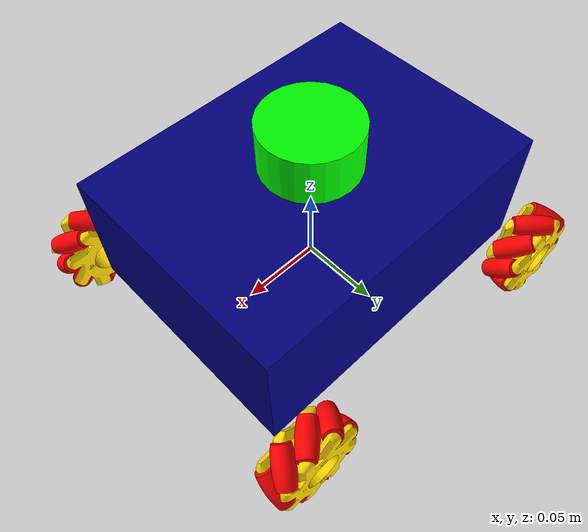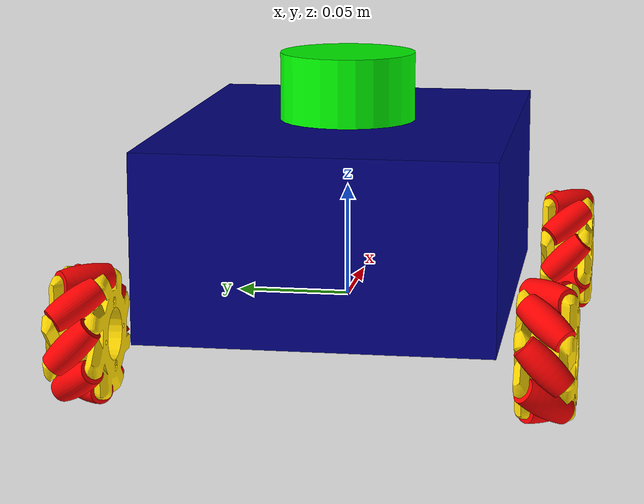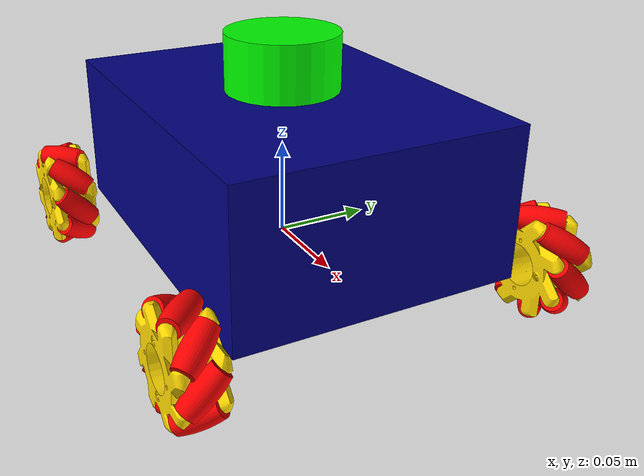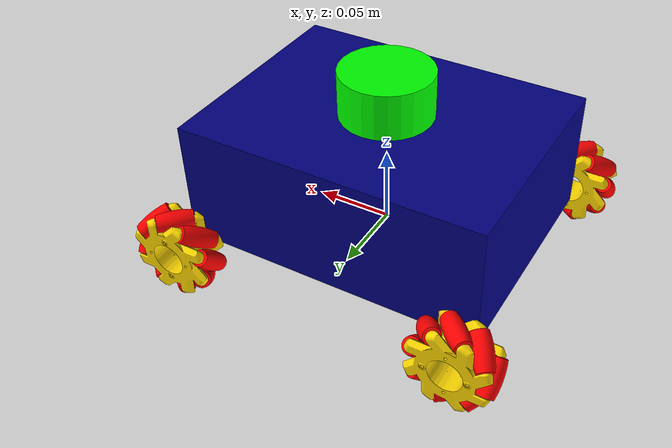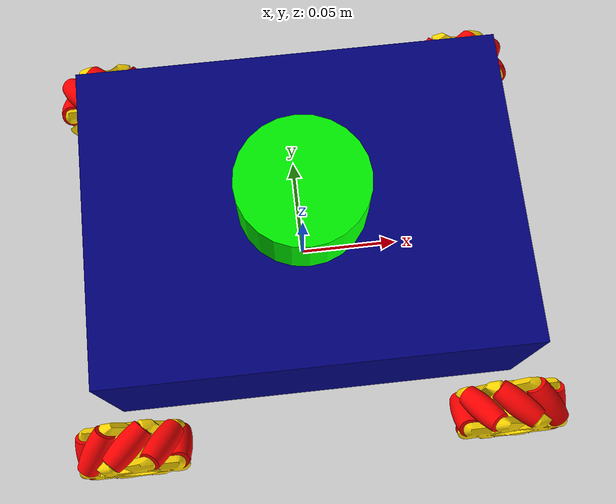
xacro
<?xml version="1.0"?>
<robot xmlns:xacro="http://www.ros.org/wiki/xacro" name="mecanum_bot">

  <xacro:include filename="$(find first_urdf)/urdf/mecanum_wheel.xacro" />

  <link name="base_link">
    <visual>
      <origin xyz="0 0 0" rpy="0 0 0" />
      <geometry>
        <box size="0.20 0.15 0.08" />
      </geometry>
      <material name="blue">
        <color rgba="0.0 0.0 0.5 1.0"/>
      </material>
    </visual>
    <collision>
      <origin xyz="0 0 0" rpy="0 0 0" />
      <geometry>
        <box size="0.20 0.15 0.08" />
      </geometry>
    </collision>
    <inertial>
      <origin xyz="0 0 0" rpy="0 0 0"/>
      <mass value="8" />

      <inertia ixx="0.019267" ixy="0.0" ixz="0.0" iyy="0.030933" iyz="0.0" izz="0.041667" />
    </inertial>
  </link>

  <gazebo reference="base_link">
    <material>Gazebo/Blue</material>
    <mu1>0.2</mu1>
    <mu2>0.2</mu2>
    <gravity>true</gravity>
  </gazebo>

  <link name="base_footprint"/>

  <joint name="base_footprint_joint" type="fixed">
    <parent link="base_footprint"/>
    <child link="base_link"/>
    <origin xyz="0 0 0.04" rpy="0 0 0"/>
  </joint>

  <link name="laser_frame">
    <visual>
      <geometry>
        <cylinder radius="0.03" length="0.03"/>
      </geometry>
      <material name="green">
        <color rgba="0.0 1.0 0.0 1.0"/>
      </material>
    </visual>
    <collision>
      <geometry>
        <cylinder radius="0.03" length="0.03"/>
      </geometry>
    </collision>
  </link>

  <joint name="laser_joint" type="fixed">
      <parent link="base_link"/>
      <child link="laser_frame"/>
      <origin xyz="0 0 0.055" rpy="0 0 0"/>
  </joint>

  <gazebo reference="laser_frame">
    <sensor name="laser" type="ray">
      <pose> 0 0 0 0 0 0 </pose>
      <visualize>true</visualize>
      <update_rate>10</update_rate>
      <ray>
        <scan>
          <horizontal>
            <samples>360</samples>
            <min_angle>-3.14</min_angle>
            <max_angle>3.14</max_angle>
          </horizontal>
        </scan>
        <range>
          <min>0.15</min>
          <max>6.0</max>
        </range>
      </ray>
      <plugin name="laser_controller" filename="libgazebo_ros_ray_sensor.so">
        <ros>
          <use_sim_time>true</use_sim_time>
          <argument>~/out:=scan</argument> <!--This is remapping from the out topic of the controller to scan topic-->
        </ros>
        <output_type>sensor_msgs/LaserScan</output_type>
        <frame_name>laser_frame</frame_name>
      </plugin>
    </sensor>
    <material>Gazebo/Green</material>
  </gazebo>

  <link name="imu_link">
    <visual>
      <geometry>
        <box size="0.02 0.02 0.02"/>
      </geometry>
      <material name="red">
        <color rgba="1.0 0.0 0.0 1.0"/>
      </material>
    </visual>
    <collision>
      <geometry>
        <box size="0.02 0.02 0.02"/>
      </geometry>
    </collision>
    <inertial>
      <mass value="0.01"/>
      <inertia ixx="1e-6" ixy="0" ixz="0" iyy="1e-6" iyz="0" izz="1e-6"/>
    </inertial>
  </link>

  <joint name="imu_joint" type="fixed">
    <parent link="base_link"/>
    <child link="imu_link"/>
    <origin xyz="0 0 0" rpy="0 0 0"/>
  </joint>

  <gazebo reference="imu_link">
    <sensor name="imu_sensor" type="imu">
      <always_on>true</always_on>
      <update_rate>100</update_rate>
      <visualize>false</visualize>
      <imu>
        <angular_velocity>
          <x><noise type="gaussian"><mean>0.0</mean><stddev>0.0002</stddev></noise></x>
          <y><noise type="gaussian"><mean>0.0</mean><stddev>0.0002</stddev></noise></y>
          <z><noise type="gaussian"><mean>0.0</mean><stddev>0.0002</stddev></noise></z>
        </angular_velocity>
        <linear_acceleration>
          <x><noise type="gaussian"><mean>0.0</mean><stddev>0.017</stddev></noise></x>
          <y><noise type="gaussian"><mean>0.0</mean><stddev>0.017</stddev></noise></y>
          <z><noise type="gaussian"><mean>0.0</mean><stddev>0.017</stddev></noise></z>
        </linear_acceleration>
      </imu>
      <plugin name="imu_plugin" filename="libgazebo_ros_imu_sensor.so">
        <ros>
          <namespace>/</namespace>
          <remapping>~/out:=imu</remapping>
        </ros>
        <initial_orientation_as_reference>false</initial_orientation_as_reference>
        <frame_name>imu_link</frame_name>
      </plugin>
    </sensor>
  </gazebo>

  <xacro:property name="wheel_stance" value="0.095" />
  <xacro:property name="wheel_z" value="-0.037" />

  <xacro:mecanum_wheel prefix="front_left"  parent="base_link"
    xyz="${wheel_stance} ${wheel_stance} ${wheel_z}"
    roll_sign="1"   hub_sign="1"  mesh_pkg="first_urdf" />
  <xacro:mecanum_wheel prefix="front_right" parent="base_link"
    xyz="${wheel_stance} ${-wheel_stance} ${wheel_z}"
    roll_sign="-1"  hub_sign="-1" mesh_pkg="first_urdf" />
  <xacro:mecanum_wheel prefix="rear_left"   parent="base_link"
    xyz="${-wheel_stance} ${wheel_stance} ${wheel_z}"
    roll_sign="-1"  hub_sign="-1" mesh_pkg="first_urdf" />
  <xacro:mecanum_wheel prefix="rear_right"  parent="base_link"
    xyz="${-wheel_stance} ${-wheel_stance} ${wheel_z}"
    roll_sign="1"   hub_sign="1"  mesh_pkg="first_urdf" />

  <ros2_control name="GazeboSystem" type="system">
    <hardware>
      <plugin>gazebo_ros2_control/GazeboSystem</plugin>
    </hardware>
    <joint name="front_left_wheel_joint">
      <command_interface name="velocity"><param name="min">-5</param><param name="max">5</param></command_interface>
      <param name="vel_kp">2.0</param><param name="vel_ki">5.0</param><param name="vel_kd">0.0</param><param name="vel_max_integral_error">5.0</param>
      <state_interface name="position"/><state_interface name="velocity"/>
    </joint>
    <joint name="front_right_wheel_joint">
      <command_interface name="velocity"><param name="min">-5</param><param name="max">5</param></command_interface>
      <param name="vel_kp">2.0</param><param name="vel_ki">5.0</param><param name="vel_kd">0.0</param><param name="vel_max_integral_error">5.0</param>
      <state_interface name="position"/><state_interface name="velocity"/>
    </joint>
    <joint name="rear_left_wheel_joint">
      <command_interface name="velocity"><param name="min">-5</param><param name="max">5</param></command_interface>
      <param name="vel_kp">2.0</param><param name="vel_ki">5.0</param><param name="vel_kd">0.0</param><param name="vel_max_integral_error">5.0</param>
      <state_interface name="position"/><state_interface name="velocity"/>
    </joint>
    <joint name="rear_right_wheel_joint">
      <command_interface name="velocity"><param name="min">-5</param><param name="max">5</param></command_interface>
      <param name="vel_kp">2.0</param><param name="vel_ki">5.0</param><param name="vel_kd">0.0</param><param name="vel_max_integral_error">5.0</param>
      <state_interface name="position"/><state_interface name="velocity"/>
    </joint>
  </ros2_control>

  <!--mecanum_drive_controller was publishing to its own private topic called odometry with its own prefix. While Rviz listens to only global topics, so had to remap to odom for frame and tf for transform.-->
  <!--Earlier I remapped to mecanum_controller_spawner_node which didn't work because it is a shortlived node. Moral of the story, never remap in spawner, the same was for reference_unstamped remapping.-->
  <gazebo>
    <plugin name="gazebo_ros2_control" filename="libgazebo_ros2_control.so">
      <parameters>$(find first_urdf)/config/mecanum_controllers.yaml</parameters>
      <ros>
        <remapping>/mecanum_drive_controller/tf_odometry:=/tf</remapping>
        <remapping>/mecanum_drive_controller/odometry:=/wheel_odom</remapping>
      </ros>
      <robot_param>robot_description</robot_param>
      <robot_param_node>robot_state_publisher</robot_param_node>
      <robot_param_type>topic</robot_param_type>
    </plugin>
  </gazebo>
</robot>

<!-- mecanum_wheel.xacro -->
<robot xmlns:xacro="http://www.ros.org/wiki/xacro">

  <xacro:macro name="mecanum_wheel" params="prefix parent xyz roll_sign mesh_pkg hub_sign">

    <link name="${prefix}_wheel_link">
      <visual>
        <origin xyz="0 0 0" rpy="0 ${(1 - hub_sign) * pi / 2} 0" />
        <geometry>
          <mesh filename="package://${mesh_pkg}/meshes/wheel_hub.STL" scale="${hub_sign} 1 1"/>
        </geometry>
        <material name="yellow">
          <color rgba="1.0 0.85 0.0 1.0" />
        </material>
      </visual>
      <collision>
        <origin xyz="0 0 0" rpy="0 ${(1 - hub_sign) * pi / 2} 0" />
        <geometry>
          <cylinder radius="0.0267" length="0.024" />
        </geometry>
      </collision>
      <inertial>
        <origin xyz="0 0 0" rpy="0 0 0" />
        <mass value="0.9" />
        <inertia ixx="1.5E-03" ixy="0.0" ixz="0.0"
                 iyy="2.5E-03" iyz="0.0" izz="2.5E-03" />
      </inertial>
    </link>

    <joint name="${prefix}_wheel_joint" type="continuous">
      <parent link="${parent}" />
      <child link="${prefix}_wheel_link" />
      <origin xyz="${xyz}" rpy="1.5708 0 0" />
      <axis xyz="0 0 -1" />
      <dynamics damping="0.005" friction="0.3"/>
    </joint>

    <gazebo reference="${prefix}_wheel_link">
      <material>Gazebo/Yellow</material>
      <mu1>0.3</mu1>
      <mu2>0.5</mu2>
      <fdir1>0 0 ${hub_sign}</fdir1>
      <kp>10000.0</kp>
      <kd>100.0</kd>
      <minDepth>0.000</minDepth>
      <maxVel>0.000</maxVel>
    </gazebo>

    <xacro:roller prefix="${prefix}" num="1" mesh_pkg="${mesh_pkg}"
      x="0.0225"    y="0.0"        rr="-0.7854" rp="0" ry="0"       roll_sign="${roll_sign}"/>
    <xacro:roller prefix="${prefix}" num="2" mesh_pkg="${mesh_pkg}"
      x="0.015909"  y="0.015911"   rr="-0.68472" rp="-0.42053" ry="0.32175" roll_sign="${roll_sign}"/>
    <xacro:roller prefix="${prefix}" num="3" mesh_pkg="${mesh_pkg}"
      x="0.0"       y="0.0225"     rr="0.7854"  rp="0" ry="-1.5708"  roll_sign="${roll_sign}"/>
    <xacro:roller prefix="${prefix}" num="4" mesh_pkg="${mesh_pkg}"
      x="-0.015911" y="0.015909"   rr="0.7854"  rp="0" ry="-0.7854"  roll_sign="${roll_sign}"/>
    <xacro:roller prefix="${prefix}" num="5" mesh_pkg="${mesh_pkg}"
      x="-0.0225"   y="0.0"        rr="0.7854"  rp="0" ry="0"        roll_sign="${roll_sign}"/>
    <xacro:roller prefix="${prefix}" num="6" mesh_pkg="${mesh_pkg}"
      x="-0.015909" y="-0.015911"  rr="0.7854"  rp="0" ry="0.7854"   roll_sign="${roll_sign}"/>
    <xacro:roller prefix="${prefix}" num="7" mesh_pkg="${mesh_pkg}"
      x="0.0"       y="-0.0225"    rr="0.7854"  rp="0" ry="1.5708"   roll_sign="${roll_sign}"/>
    <xacro:roller prefix="${prefix}" num="8" mesh_pkg="${mesh_pkg}"
      x="0.015911"  y="-0.015909"  rr="0.7854"  rp="0" ry="2.3562"   roll_sign="${roll_sign}"/>

  </xacro:macro>

  <xacro:macro name="roller" params="prefix num mesh_pkg x y rr rp ry roll_sign">
    <link name="${prefix}_roller_${num}">
      <visual>
        <origin xyz="0 0 0" rpy="0 0 0" />
        <geometry>
          <mesh filename="package://${mesh_pkg}/meshes/roller_${num}.STL" scale="1 1 1"/>
        </geometry>
        <material name="red">
          <color rgba="1.0 0.0 0.0 1.0" />
        </material>
      </visual>
      <collision>
        <origin xyz="0 0 0" rpy="0 0 0" />
        <geometry>
          <cylinder radius="0.0055" length="0.02" />
        </geometry>
      </collision>
      <inertial>
        <mass value="0.05" />
        <inertia ixx="1.2617E-07" ixy="0.0" ixz="0.0"
                 iyy="1.2617E-07" iyz="0.0" izz="9.1291E-08" />
      </inertial>
    </link>

    <joint name="${prefix}_roller_${num}_joint" type="continuous">
      <parent link="${prefix}_wheel_link" />
      <child link="${prefix}_roller_${num}" />
      <origin xyz="${x} ${roll_sign * y} 0" rpy="${roll_sign * rr} ${rp} ${roll_sign * ry}" />
      <axis xyz="0 0 1" />
      <dynamics damping="0.005" friction="0.2"/>
    </joint>

    <gazebo reference="${prefix}_roller_${num}">
      <material>Gazebo/Red</material>
      <mu1>0.9</mu1>
      <mu2>0.06</mu2>
      <fdir1>0 0 ${roll_sign}</fdir1>
      <kp>10000.0</kp>
      <kd>100.0</kd>
      <minDepth>0.000</minDepth>
      <maxVel>0.000</maxVel>
    </gazebo>
  </xacro:macro>

</robot>
